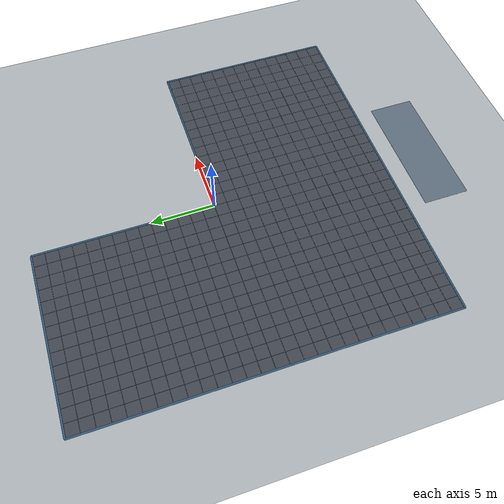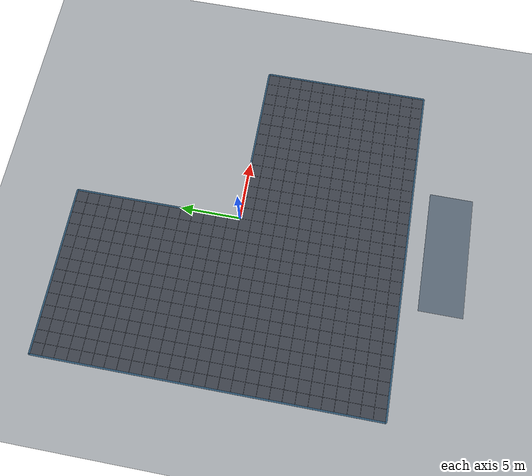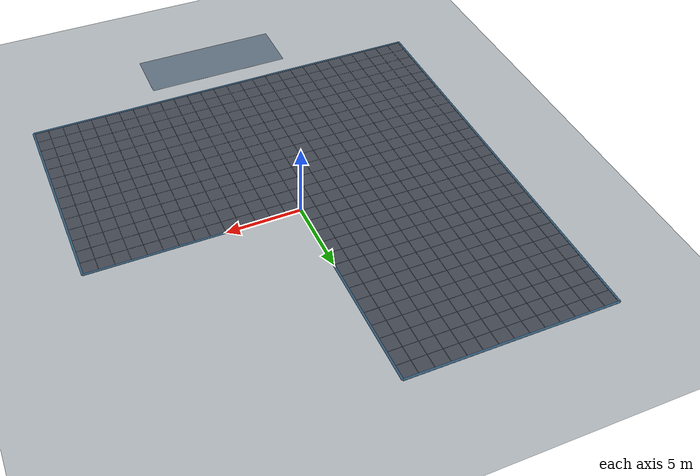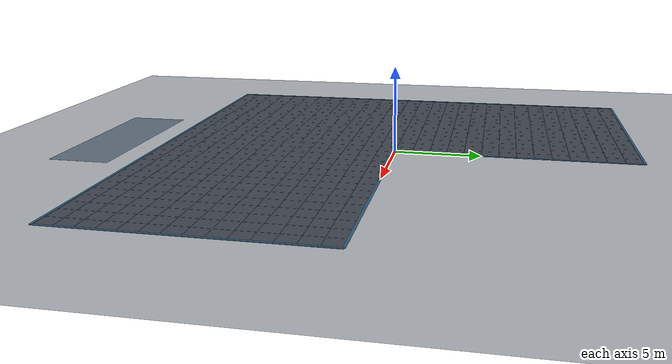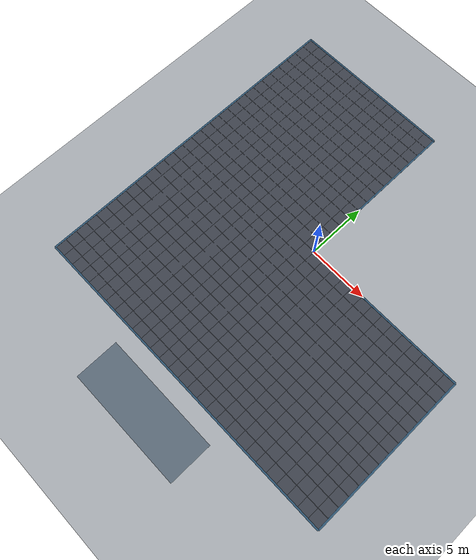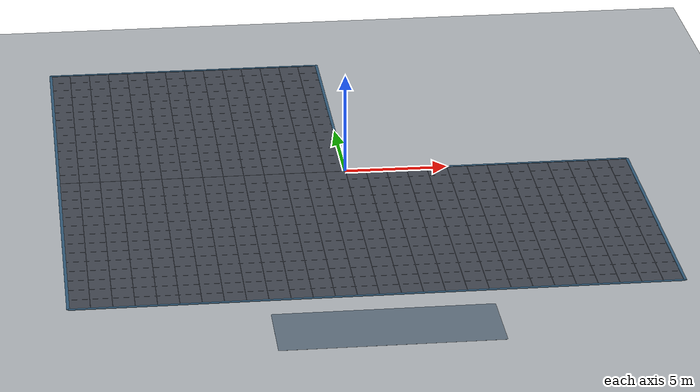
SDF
<sdf version="1.8">
 <world name="swarm_world">
  <model name="ground_plane">
   <static>true</static>
   <link name="link">
    <collision name="collision">
     <geometry><plane><normal>0 0 1</normal><size>100 100</size></plane></geometry>
    </collision>
    <visual name="visual">
     <geometry><plane><normal>0 0 1</normal><size>100 100</size></plane></geometry>
     <material>
      <ambient>0.70 0.72 0.74 1.0</ambient>
      <diffuse>0.70 0.72 0.74 1.0</diffuse>
      <specular>0.1 0.1 0.1 1.0</specular>
     </material>
    </visual>
   </link>
  </model>
  <model name="staging_pad">
   <static>true</static>
   <link name="pad_link">
    <visual name="pad_v">
     <pose>0.0 -17.25 0.003 0 0 0</pose>
     <geometry><box><size>10.0 3.5 0.005</size></box></geometry>
     <material><ambient>0.26 0.28 0.32 1.0</ambient><diffuse>0.26 0.28 0.32 1.0</diffuse></material>
    </visual>
    <visual name="pad_border">
     <pose>0.0 -17.25 0.005 0 0 0</pose>
     <geometry><box><size>10.1 3.6 0.003</size></box></geometry>
     <material><ambient>0.38 0.44 0.50 1.0</ambient><diffuse>0.38 0.44 0.50 1.0</diffuse></material>
    </visual>
   </link>
  </model>
  <model name="visual_region_floor_l_shape">
   <static>true</static>
   <link name="floor_link">
    <visual name="floor_box_0">
     <pose>0.0000 -7.0000 0.003 0 0 0</pose>
     <geometry><box><size>28.0000 14.0000 0.005</size></box></geometry>
     <material>
      <ambient>0.26 0.28 0.32 1.0</ambient>
      <diffuse>0.26 0.28 0.32 1.0</diffuse>
      <specular>0.15 0.15 0.15 1.0</specular>
     </material>
    </visual>
    <visual name="floor_box_1">
     <pose>-7.0000 7.0000 0.003 0 0 0</pose>
     <geometry><box><size>14.0000 14.0000 0.005</size></box></geometry>
     <material>
      <ambient>0.26 0.28 0.32 1.0</ambient>
      <diffuse>0.26 0.28 0.32 1.0</diffuse>
      <specular>0.15 0.15 0.15 1.0</specular>
     </material>
    </visual>
    <visual name="grid_v_0">
     <pose>-14.00 -7.0000 0.005 0 0 0</pose>
     <geometry><box><size>0.025 14.0000 0.003</size></box></geometry>
     <material><ambient>0.33 0.35 0.39 1.0</ambient><diffuse>0.33 0.35 0.39 1.0</diffuse></material>
    </visual>
    <visual name="grid_v_1">
     <pose>-13.00 -7.0000 0.005 0 0 0</pose>
     <geometry><box><size>0.025 14.0000 0.003</size></box></geometry>
     <material><ambient>0.33 0.35 0.39 1.0</ambient><diffuse>0.33 0.35 0.39 1.0</diffuse></material>
    </visual>
    <visual name="grid_v_2">
     <pose>-12.00 -7.0000 0.005 0 0 0</pose>
     <geometry><box><size>0.025 14.0000 0.003</size></box></geometry>
     <material><ambient>0.33 0.35 0.39 1.0</ambient><diffuse>0.33 0.35 0.39 1.0</diffuse></material>
    </visual>
    <visual name="grid_v_3">
     <pose>-11.00 -7.0000 0.005 0 0 0</pose>
     <geometry><box><size>0.025 14.0000 0.003</size></box></geometry>
     <material><ambient>0.33 0.35 0.39 1.0</ambient><diffuse>0.33 0.35 0.39 1.0</diffuse></material>
    </visual>
    <visual name="grid_v_4">
     <pose>-10.00 -7.0000 0.005 0 0 0</pose>
     <geometry><box><size>0.025 14.0000 0.003</size></box></geometry>
     <material><ambient>0.33 0.35 0.39 1.0</ambient><diffuse>0.33 0.35 0.39 1.0</diffuse></material>
    </visual>
    <visual name="grid_v_5">
     <pose>-9.00 -7.0000 0.005 0 0 0</pose>
     <geometry><box><size>0.025 14.0000 0.003</size></box></geometry>
     <material><ambient>0.33 0.35 0.39 1.0</ambient><diffuse>0.33 0.35 0.39 1.0</diffuse></material>
    </visual>
    <visual name="grid_v_6">
     <pose>-8.00 -7.0000 0.005 0 0 0</pose>
     <geometry><box><size>0.025 14.0000 0.003</size></box></geometry>
     <material><ambient>0.33 0.35 0.39 1.0</ambient><diffuse>0.33 0.35 0.39 1.0</diffuse></material>
    </visual>
    <visual name="grid_v_7">
     <pose>-7.00 -7.0000 0.005 0 0 0</pose>
     <geometry><box><size>0.025 14.0000 0.003</size></box></geometry>
     <material><ambient>0.33 0.35 0.39 1.0</ambient><diffuse>0.33 0.35 0.39 1.0</diffuse></material>
    </visual>
    <visual name="grid_v_8">
     <pose>-6.00 -7.0000 0.005 0 0 0</pose>
     <geometry><box><size>0.025 14.0000 0.003</size></box></geometry>
     <material><ambient>0.33 0.35 0.39 1.0</ambient><diffuse>0.33 0.35 0.39 1.0</diffuse></material>
    </visual>
    <visual name="grid_v_9">
     <pose>-5.00 -7.0000 0.005 0 0 0</pose>
     <geometry><box><size>0.025 14.0000 0.003</size></box></geometry>
     <material><ambient>0.33 0.35 0.39 1.0</ambient><diffuse>0.33 0.35 0.39 1.0</diffuse></material>
    </visual>
    <visual name="grid_v_10">
     <pose>-4.00 -7.0000 0.005 0 0 0</pose>
     <geometry><box><size>0.025 14.0000 0.003</size></box></geometry>
     <material><ambient>0.33 0.35 0.39 1.0</ambient><diffuse>0.33 0.35 0.39 1.0</diffuse></material>
    </visual>
    <visual name="grid_v_11">
     <pose>-3.00 -7.0000 0.005 0 0 0</pose>
     <geometry><box><size>0.025 14.0000 0.003</size></box></geometry>
     <material><ambient>0.33 0.35 0.39 1.0</ambient><diffuse>0.33 0.35 0.39 1.0</diffuse></material>
    </visual>
    <visual name="grid_v_12">
     <pose>-2.00 -7.0000 0.005 0 0 0</pose>
     <geometry><box><size>0.025 14.0000 0.003</size></box></geometry>
     <material><ambient>0.33 0.35 0.39 1.0</ambient><diffuse>0.33 0.35 0.39 1.0</diffuse></material>
    </visual>
    <visual name="grid_v_13">
     <pose>-1.00 -7.0000 0.005 0 0 0</pose>
     <geometry><box><size>0.025 14.0000 0.003</size></box></geometry>
     <material><ambient>0.33 0.35 0.39 1.0</ambient><diffuse>0.33 0.35 0.39 1.0</diffuse></material>
    </visual>
    <visual name="grid_v_14">
     <pose>0.00 -7.0000 0.005 0 0 0</pose>
     <geometry><box><size>0.025 14.0000 0.003</size></box></geometry>
     <material><ambient>0.33 0.35 0.39 1.0</ambient><diffuse>0.33 0.35 0.39 1.0</diffuse></material>
    </visual>
    <visual name="grid_v_15">
     <pose>1.00 -7.0000 0.005 0 0 0</pose>
     <geometry><box><size>0.025 14.0000 0.003</size></box></geometry>
     <material><ambient>0.33 0.35 0.39 1.0</ambient><diffuse>0.33 0.35 0.39 1.0</diffuse></material>
    </visual>
    <visual name="grid_v_16">
     <pose>2.00 -7.0000 0.005 0 0 0</pose>
     <geometry><box><size>0.025 14.0000 0.003</size></box></geometry>
     <material><ambient>0.33 0.35 0.39 1.0</ambient><diffuse>0.33 0.35 0.39 1.0</diffuse></material>
    </visual>
    <visual name="grid_v_17">
     <pose>3.00 -7.0000 0.005 0 0 0</pose>
     <geometry><box><size>0.025 14.0000 0.003</size></box></geometry>
     <material><ambient>0.33 0.35 0.39 1.0</ambient><diffuse>0.33 0.35 0.39 1.0</diffuse></material>
    </visual>
    <visual name="grid_v_18">
     <pose>4.00 -7.0000 0.005 0 0 0</pose>
     <geometry><box><size>0.025 14.0000 0.003</size></box></geometry>
     <material><ambient>0.33 0.35 0.39 1.0</ambient><diffuse>0.33 0.35 0.39 1.0</diffuse></material>
    </visual>
    <visual name="grid_v_19">
     <pose>5.00 -7.0000 0.005 0 0 0</pose>
     <geometry><box><size>0.025 14.0000 0.003</size></box></geometry>
     <material><ambient>0.33 0.35 0.39 1.0</ambient><diffuse>0.33 0.35 0.39 1.0</diffuse></material>
    </visual>
    <visual name="grid_v_20">
     <pose>6.00 -7.0000 0.005 0 0 0</pose>
     <geometry><box><size>0.025 14.0000 0.003</size></box></geometry>
     <material><ambient>0.33 0.35 0.39 1.0</ambient><diffuse>0.33 0.35 0.39 1.0</diffuse></material>
    </visual>
    <visual name="grid_v_21">
     <pose>7.00 -7.0000 0.005 0 0 0</pose>
     <geometry><box><size>0.025 14.0000 0.003</size></box></geometry>
     <material><ambient>0.33 0.35 0.39 1.0</ambient><diffuse>0.33 0.35 0.39 1.0</diffuse></material>
    </visual>
    <visual name="grid_v_22">
     <pose>8.00 -7.0000 0.005 0 0 0</pose>
     <geometry><box><size>0.025 14.0000 0.003</size></box></geometry>
     <material><ambient>0.33 0.35 0.39 1.0</ambient><diffuse>0.33 0.35 0.39 1.0</diffuse></material>
    </visual>
    <visual name="grid_v_23">
     <pose>9.00 -7.0000 0.005 0 0 0</pose>
     <geometry><box><size>0.025 14.0000 0.003</size></box></geometry>
     <material><ambient>0.33 0.35 0.39 1.0</ambient><diffuse>0.33 0.35 0.39 1.0</diffuse></material>
    </visual>
    <visual name="grid_v_24">
     <pose>10.00 -7.0000 0.005 0 0 0</pose>
     <geometry><box><size>0.025 14.0000 0.003</size></box></geometry>
     <material><ambient>0.33 0.35 0.39 1.0</ambient><diffuse>0.33 0.35 0.39 1.0</diffuse></material>
    </visual>
    <visual name="grid_v_25">
     <pose>11.00 -7.0000 0.005 0 0 0</pose>
     <geometry><box><size>0.025 14.0000 0.003</size></box></geometry>
     <material><ambient>0.33 0.35 0.39 1.0</ambient><diffuse>0.33 0.35 0.39 1.0</diffuse></material>
    </visual>
    <visual name="grid_v_26">
     <pose>12.00 -7.0000 0.005 0 0 0</pose>
     <geometry><box><size>0.025 14.0000 0.003</size></box></geometry>
     <material><ambient>0.33 0.35 0.39 1.0</ambient><diffuse>0.33 0.35 0.39 1.0</diffuse></material>
    </visual>
    <visual name="grid_v_27">
     <pose>13.00 -7.0000 0.005 0 0 0</pose>
     <geometry><box><size>0.025 14.0000 0.003</size></box></geometry>
     <material><ambient>0.33 0.35 0.39 1.0</ambient><diffuse>0.33 0.35 0.39 1.0</diffuse></material>
    </visual>
    <visual name="grid_v_28">
     <pose>14.00 -7.0000 0.005 0 0 0</pose>
     <geometry><box><size>0.025 14.0000 0.003</size></box></geometry>
     <material><ambient>0.33 0.35 0.39 1.0</ambient><diffuse>0.33 0.35 0.39 1.0</diffuse></material>
    </visual>
    <visual name="grid_h_29">
     <pose>0.0000 -14.00 0.005 0 0 0</pose>
     <geometry><box><size>28.0000 0.025 0.003</size></box></geometry>
     <material><ambient>0.33 0.35 0.39 1.0</ambient><diffuse>0.33 0.35 0.39 1.0</diffuse></material>
    </visual>
    <visual name="grid_h_30">
     <pose>0.0000 -13.00 0.005 0 0 0</pose>
     <geometry><box><size>28.0000 0.025 0.003</size></box></geometry>
     <material><ambient>0.33 0.35 0.39 1.0</ambient><diffuse>0.33 0.35 0.39 1.0</diffuse></material>
    </visual>
    <visual name="grid_h_31">
     <pose>0.0000 -12.00 0.005 0 0 0</pose>
     <geometry><box><size>28.0000 0.025 0.003</size></box></geometry>
     <material><ambient>0.33 0.35 0.39 1.0</ambient><diffuse>0.33 0.35 0.39 1.0</diffuse></material>
    </visual>
    <visual name="grid_h_32">
     <pose>0.0000 -11.00 0.005 0 0 0</pose>
     <geometry><box><size>28.0000 0.025 0.003</size></box></geometry>
     <material><ambient>0.33 0.35 0.39 1.0</ambient><diffuse>0.33 0.35 0.39 1.0</diffuse></material>
    </visual>
    <visual name="grid_h_33">
     <pose>0.0000 -10.00 0.005 0 0 0</pose>
     <geometry><box><size>28.0000 0.025 0.003</size></box></geometry>
     <material><ambient>0.33 0.35 0.39 1.0</ambient><diffuse>0.33 0.35 0.39 1.0</diffuse></material>
    </visual>
    <visual name="grid_h_34">
     <pose>0.0000 -9.00 0.005 0 0 0</pose>
     <geometry><box><size>28.0000 0.025 0.003</size></box></geometry>
     <material><ambient>0.33 0.35 0.39 1.0</ambient><diffuse>0.33 0.35 0.39 1.0</diffuse></material>
    </visual>
    <visual name="grid_h_35">
     <pose>0.0000 -8.00 0.005 0 0 0</pose>
     <geometry><box><size>28.0000 0.025 0.003</size></box></geometry>
     <material><ambient>0.33 0.35 0.39 1.0</ambient><diffuse>0.33 0.35 0.39 1.0</diffuse></material>
    </visual>
    <visual name="grid_h_36">
     <pose>0.0000 -7.00 0.005 0 0 0</pose>
     <geometry><box><size>28.0000 0.025 0.003</size></box></geometry>
     <material><ambient>0.33 0.35 0.39 1.0</ambient><diffuse>0.33 0.35 0.39 1.0</diffuse></material>
    </visual>
    <visual name="grid_h_37">
     <pose>0.0000 -6.00 0.005 0 0 0</pose>
     <geometry><box><size>28.0000 0.025 0.003</size></box></geometry>
     <material><ambient>0.33 0.35 0.39 1.0</ambient><diffuse>0.33 0.35 0.39 1.0</diffuse></material>
    </visual>
    <visual name="grid_h_38">
     <pose>0.0000 -5.00 0.005 0 0 0</pose>
     <geometry><box><size>28.0000 0.025 0.003</size></box></geometry>
     <material><ambient>0.33 0.35 0.39 1.0</ambient><diffuse>0.33 0.35 0.39 1.0</diffuse></material>
    </visual>
    <visual name="grid_h_39">
     <pose>0.0000 -4.00 0.005 0 0 0</pose>
     <geometry><box><size>28.0000 0.025 0.003</size></box></geometry>
     <material><ambient>0.33 0.35 0.39 1.0</ambient><diffuse>0.33 0.35 0.39 1.0</diffuse></material>
    </visual>
    <visual name="grid_h_40">
     <pose>0.0000 -3.00 0.005 0 0 0</pose>
     <geometry><box><size>28.0000 0.025 0.003</size></box></geometry>
     <material><ambient>0.33 0.35 0.39 1.0</ambient><diffuse>0.33 0.35 0.39 1.0</diffuse></material>
    </visual>
    <visual name="grid_h_41">
     <pose>0.0000 -2.00 0.005 0 0 0</pose>
     <geometry><box><size>28.0000 0.025 0.003</size></box></geometry>
     <material><ambient>0.33 0.35 0.39 1.0</ambient><diffuse>0.33 0.35 0.39 1.0</diffuse></material>
    </visual>
    <visual name="grid_h_42">
     <pose>0.0000 -1.00 0.005 0 0 0</pose>
     <geometry><box><size>28.0000 0.025 0.003</size></box></geometry>
     <material><ambient>0.33 0.35 0.39 1.0</ambient><diffuse>0.33 0.35 0.39 1.0</diffuse></material>
    </visual>
    <visual name="grid_h_43">
     <pose>0.0000 0.00 0.005 0 0 0</pose>
     <geometry><box><size>28.0000 0.025 0.003</size></box></geometry>
     <material><ambient>0.33 0.35 0.39 1.0</ambient><diffuse>0.33 0.35 0.39 1.0</diffuse></material>
    </visual>
    <visual name="grid_v_44">
     <pose>-14.00 7.0000 0.005 0 0 0</pose>
     <geometry><box><size>0.025 14.0000 0.003</size></box></geometry>
     <material><ambient>0.33 0.35 0.39 1.0</ambient><diffuse>0.33 0.35 0.39 1.0</diffuse></material>
    </visual>
    <visual name="grid_v_45">
     <pose>-13.00 7.0000 0.005 0 0 0</pose>
     <geometry><box><size>0.025 14.0000 0.003</size></box></geometry>
     <material><ambient>0.33 0.35 0.39 1.0</ambient><diffuse>0.33 0.35 0.39 1.0</diffuse></material>
    </visual>
    <visual name="grid_v_46">
     <pose>-12.00 7.0000 0.005 0 0 0</pose>
     <geometry><box><size>0.025 14.0000 0.003</size></box></geometry>
     <material><ambient>0.33 0.35 0.39 1.0</ambient><diffuse>0.33 0.35 0.39 1.0</diffuse></material>
    </visual>
    <visual name="grid_v_47">
     <pose>-11.00 7.0000 0.005 0 0 0</pose>
     <geometry><box><size>0.025 14.0000 0.003</size></box></geometry>
     <material><ambient>0.33 0.35 0.39 1.0</ambient><diffuse>0.33 0.35 0.39 1.0</diffuse></material>
    </visual>
    <visual name="grid_v_48">
     <pose>-10.00 7.0000 0.005 0 0 0</pose>
     <geometry><box><size>0.025 14.0000 0.003</size></box></geometry>
     <material><ambient>0.33 0.35 0.39 1.0</ambient><diffuse>0.33 0.35 0.39 1.0</diffuse></material>
    </visual>
    <visual name="grid_v_49">
     <pose>-9.00 7.0000 0.005 0 0 0</pose>
     <geometry><box><size>0.025 14.0000 0.003</size></box></geometry>
     <material><ambient>0.33 0.35 0.39 1.0</ambient><diffuse>0.33 0.35 0.39 1.0</diffuse></material>
    </visual>
    <visual name="grid_v_50">
     <pose>-8.00 7.0000 0.005 0 0 0</pose>
     <geometry><box><size>0.025 14.0000 0.003</size></box></geometry>
     <material><ambient>0.33 0.35 0.39 1.0</ambient><diffuse>0.33 0.35 0.39 1.0</diffuse></material>
    </visual>
    <visual name="grid_v_51">
     <pose>-7.00 7.0000 0.005 0 0 0</pose>
     <geometry><box><size>0.025 14.0000 0.003</size></box></geometry>
     <material><ambient>0.33 0.35 0.39 1.0</ambient><diffuse>0.33 0.35 0.39 1.0</diffuse></material>
    </visual>
    <visual name="grid_v_52">
     <pose>-6.00 7.0000 0.005 0 0 0</pose>
     <geometry><box><size>0.025 14.0000 0.003</size></box></geometry>
     <material><ambient>0.33 0.35 0.39 1.0</ambient><diffuse>0.33 0.35 0.39 1.0</diffuse></material>
    </visual>
    <visual name="grid_v_53">
     <pose>-5.00 7.0000 0.005 0 0 0</pose>
     <geometry><box><size>0.025 14.0000 0.003</size></box></geometry>
     <material><ambient>0.33 0.35 0.39 1.0</ambient><diffuse>0.33 0.35 0.39 1.0</diffuse></material>
    </visual>
    <visual name="grid_v_54">
     <pose>-4.00 7.0000 0.005 0 0 0</pose>
     <geometry><box><size>0.025 14.0000 0.003</size></box></geometry>
     <material><ambient>0.33 0.35 0.39 1.0</ambient><diffuse>0.33 0.35 0.39 1.0</diffuse></material>
    </visual>
    <visual name="grid_v_55">
     <pose>-3.00 7.0000 0.005 0 0 0</pose>
     <geometry><box><size>0.025 14.0000 0.003</size></box></geometry>
     <material><ambient>0.33 0.35 0.39 1.0</ambient><diffuse>0.33 0.35 0.39 1.0</diffuse></material>
    </visual>
    <visual name="grid_v_56">
     <pose>-2.00 7.0000 0.005 0 0 0</pose>
     <geometry><box><size>0.025 14.0000 0.003</size></box></geometry>
     <material><ambient>0.33 0.35 0.39 1.0</ambient><diffuse>0.33 0.35 0.39 1.0</diffuse></material>
    </visual>
    <visual name="grid_v_57">
     <pose>-1.00 7.0000 0.005 0 0 0</pose>
     <geometry><box><size>0.025 14.0000 0.003</size></box></geometry>
     <material><ambient>0.33 0.35 0.39 1.0</ambient><diffuse>0.33 0.35 0.39 1.0</diffuse></material>
    </visual>
    <visual name="grid_v_58">
     <pose>0.00 7.0000 0.005 0 0 0</pose>
     <geometry><box><size>0.025 14.0000 0.003</size></box></geometry>
     <material><ambient>0.33 0.35 0.39 1.0</ambient><diffuse>0.33 0.35 0.39 1.0</diffuse></material>
    </visual>
    <visual name="grid_h_59">
     <pose>-7.0000 0.00 0.005 0 0 0</pose>
     <geometry><box><size>14.0000 0.025 0.003</size></box></geometry>
     <material><ambient>0.33 0.35 0.39 1.0</ambient><diffuse>0.33 0.35 0.39 1.0</diffuse></material>
    </visual>
    <visual name="grid_h_60">
     <pose>-7.0000 1.00 0.005 0 0 0</pose>
     <geometry><box><size>14.0000 0.025 0.003</size></box></geometry>
     <material><ambient>0.33 0.35 0.39 1.0</ambient><diffuse>0.33 0.35 0.39 1.0</diffuse></material>
    </visual>
    <visual name="grid_h_61">
     <pose>-7.0000 2.00 0.005 0 0 0</pose>
     <geometry><box><size>14.0000 0.025 0.003</size></box></geometry>
     <material><ambient>0.33 0.35 0.39 1.0</ambient><diffuse>0.33 0.35 0.39 1.0</diffuse></material>
    </visual>
    <visual name="grid_h_62">
     <pose>-7.0000 3.00 0.005 0 0 0</pose>
     <geometry><box><size>14.0000 0.025 0.003</size></box></geometry>
     <material><ambient>0.33 0.35 0.39 1.0</ambient><diffuse>0.33 0.35 0.39 1.0</diffuse></material>
    </visual>
    <visual name="grid_h_63">
     <pose>-7.0000 4.00 0.005 0 0 0</pose>
     <geometry><box><size>14.0000 0.025 0.003</size></box></geometry>
     <material><ambient>0.33 0.35 0.39 1.0</ambient><diffuse>0.33 0.35 0.39 1.0</diffuse></material>
    </visual>
    <visual name="grid_h_64">
     <pose>-7.0000 5.00 0.005 0 0 0</pose>
     <geometry><box><size>14.0000 0.025 0.003</size></box></geometry>
     <material><ambient>0.33 0.35 0.39 1.0</ambient><diffuse>0.33 0.35 0.39 1.0</diffuse></material>
    </visual>
    <visual name="grid_h_65">
     <pose>-7.0000 6.00 0.005 0 0 0</pose>
     <geometry><box><size>14.0000 0.025 0.003</size></box></geometry>
     <material><ambient>0.33 0.35 0.39 1.0</ambient><diffuse>0.33 0.35 0.39 1.0</diffuse></material>
    </visual>
    <visual name="grid_h_66">
     <pose>-7.0000 7.00 0.005 0 0 0</pose>
     <geometry><box><size>14.0000 0.025 0.003</size></box></geometry>
     <material><ambient>0.33 0.35 0.39 1.0</ambient><diffuse>0.33 0.35 0.39 1.0</diffuse></material>
    </visual>
    <visual name="grid_h_67">
     <pose>-7.0000 8.00 0.005 0 0 0</pose>
     <geometry><box><size>14.0000 0.025 0.003</size></box></geometry>
     <material><ambient>0.33 0.35 0.39 1.0</ambient><diffuse>0.33 0.35 0.39 1.0</diffuse></material>
    </visual>
    <visual name="grid_h_68">
     <pose>-7.0000 9.00 0.005 0 0 0</pose>
     <geometry><box><size>14.0000 0.025 0.003</size></box></geometry>
     <material><ambient>0.33 0.35 0.39 1.0</ambient><diffuse>0.33 0.35 0.39 1.0</diffuse></material>
    </visual>
    <visual name="grid_h_69">
     <pose>-7.0000 10.00 0.005 0 0 0</pose>
     <geometry><box><size>14.0000 0.025 0.003</size></box></geometry>
     <material><ambient>0.33 0.35 0.39 1.0</ambient><diffuse>0.33 0.35 0.39 1.0</diffuse></material>
    </visual>
    <visual name="grid_h_70">
     <pose>-7.0000 11.00 0.005 0 0 0</pose>
     <geometry><box><size>14.0000 0.025 0.003</size></box></geometry>
     <material><ambient>0.33 0.35 0.39 1.0</ambient><diffuse>0.33 0.35 0.39 1.0</diffuse></material>
    </visual>
    <visual name="grid_h_71">
     <pose>-7.0000 12.00 0.005 0 0 0</pose>
     <geometry><box><size>14.0000 0.025 0.003</size></box></geometry>
     <material><ambient>0.33 0.35 0.39 1.0</ambient><diffuse>0.33 0.35 0.39 1.0</diffuse></material>
    </visual>
    <visual name="grid_h_72">
     <pose>-7.0000 13.00 0.005 0 0 0</pose>
     <geometry><box><size>14.0000 0.025 0.003</size></box></geometry>
     <material><ambient>0.33 0.35 0.39 1.0</ambient><diffuse>0.33 0.35 0.39 1.0</diffuse></material>
    </visual>
    <visual name="grid_h_73">
     <pose>-7.0000 14.00 0.005 0 0 0</pose>
     <geometry><box><size>14.0000 0.025 0.003</size></box></geometry>
     <material><ambient>0.33 0.35 0.39 1.0</ambient><diffuse>0.33 0.35 0.39 1.0</diffuse></material>
    </visual>
   </link>
  </model>
  <model name="region_perimeter_border_l_shape">
   <static>true</static>
   <link name="border_link">
    <visual name="border_edge_0">
     <pose>0.0000 -14.0000 0.015 0 0 0.0000</pose>
     <geometry><box><size>28.0000 0.14 0.025</size></box></geometry>
     <material>
      <ambient>0.20 0.36 0.48 1.0</ambient>
      <diffuse>0.20 0.36 0.48 1.0</diffuse>
      <specular>0.25 0.25 0.25 1.0</specular>
     </material>
    </visual>
    <visual name="border_edge_1">
     <pose>14.0000 -7.0000 0.015 0 0 1.5708</pose>
     <geometry><box><size>14.0000 0.14 0.025</size></box></geometry>
     <material>
      <ambient>0.20 0.36 0.48 1.0</ambient>
      <diffuse>0.20 0.36 0.48 1.0</diffuse>
      <specular>0.25 0.25 0.25 1.0</specular>
     </material>
    </visual>
    <visual name="border_edge_2">
     <pose>7.0000 0.0000 0.015 0 0 3.1416</pose>
     <geometry><box><size>14.0000 0.14 0.025</size></box></geometry>
     <material>
      <ambient>0.20 0.36 0.48 1.0</ambient>
      <diffuse>0.20 0.36 0.48 1.0</diffuse>
      <specular>0.25 0.25 0.25 1.0</specular>
     </material>
    </visual>
    <visual name="border_edge_3">
     <pose>0.0000 7.0000 0.015 0 0 1.5708</pose>
     <geometry><box><size>14.0000 0.14 0.025</size></box></geometry>
     <material>
      <ambient>0.20 0.36 0.48 1.0</ambient>
      <diffuse>0.20 0.36 0.48 1.0</diffuse>
      <specular>0.25 0.25 0.25 1.0</specular>
     </material>
    </visual>
    <visual name="border_edge_4">
     <pose>-7.0000 14.0000 0.015 0 0 3.1416</pose>
     <geometry><box><size>14.0000 0.14 0.025</size></box></geometry>
     <material>
      <ambient>0.20 0.36 0.48 1.0</ambient>
      <diffuse>0.20 0.36 0.48 1.0</diffuse>
      <specular>0.25 0.25 0.25 1.0</specular>
     </material>
    </visual>
    <visual name="border_edge_5">
     <pose>-14.0000 0.0000 0.015 0 0 -1.5708</pose>
     <geometry><box><size>28.0000 0.14 0.025</size></box></geometry>
     <material>
      <ambient>0.20 0.36 0.48 1.0</ambient>
      <diffuse>0.20 0.36 0.48 1.0</diffuse>
      <specular>0.25 0.25 0.25 1.0</specular>
     </material>
    </visual>
   </link>
  </model>
 </world>
</sdf>
